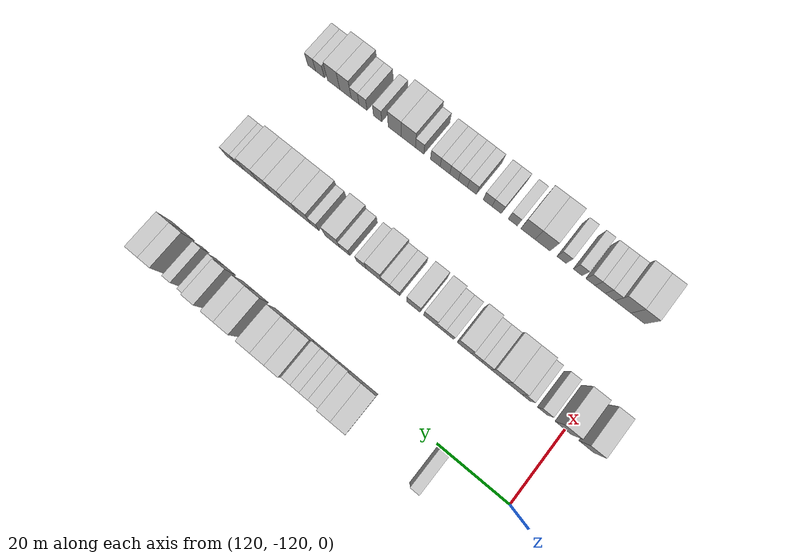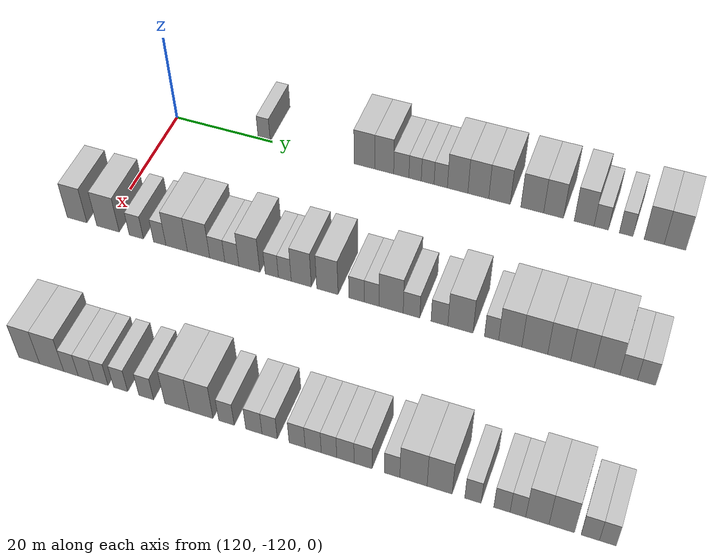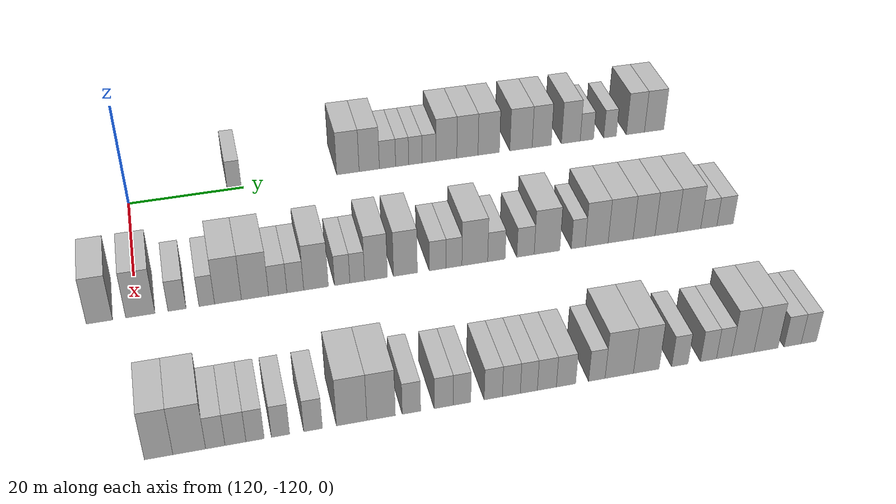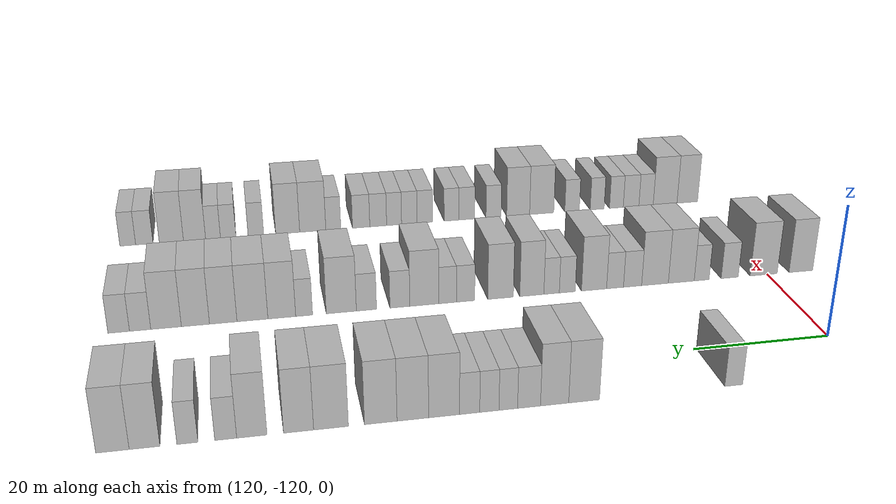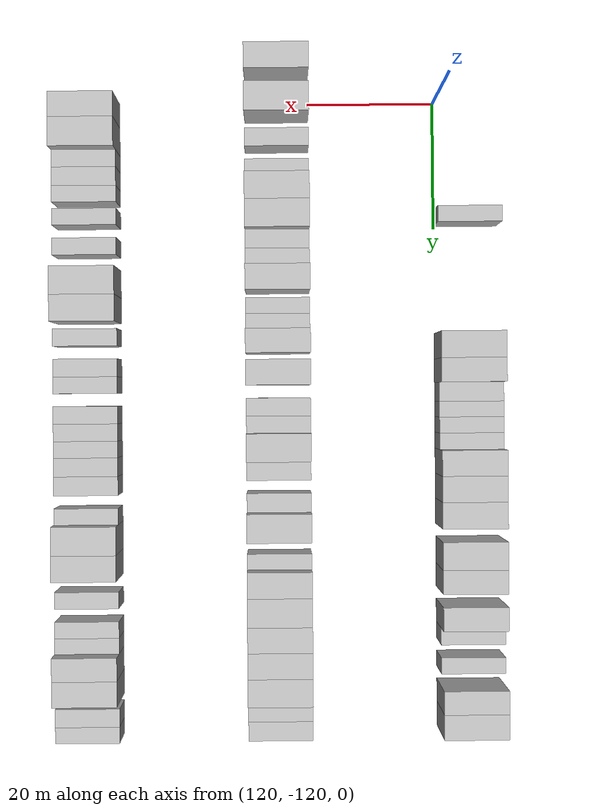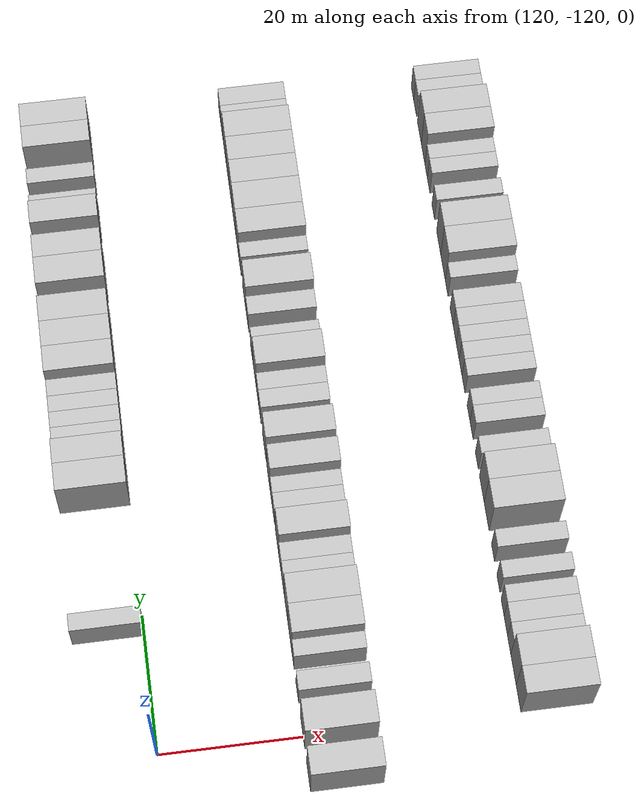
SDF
<sdf version="1.6">
 <world name="default">
  <model name="building_768">
   <static>1</static>
   <pose>115.0000 -101.6348 0 0.000000 0.000000 0.000000</pose>
   <link name="link">
    <pose>0 0 3.00 0 0 0</pose>
    <collision name="collision"><geometry><box><size>10.0000 2.4878 6.0000</size></box></geometry></collision>
    <visual name="visual">
     <cast_shadows>0</cast_shadows>
     <geometry><box><size>10.0000 2.4878 6.0000</size></box></geometry>
     <material>
      <script>
       <uri>model://HANNAS_wall/materials/scripts</uri>
       <uri>model://HANNAS_wall/materials/textures</uri>
       <name>vrc/HANNAS_wall</name>
      </script>
     </material>
    </visual>
   </link>
  </model>
  <model name="building_769">
   <static>1</static>
   <pose>115.0000 -81.2469 0 0.000000 0.000000 0.000000</pose>
   <link name="link">
    <pose>0 0 4.50 0 0 0</pose>
    <collision name="collision"><geometry><box><size>10.0000 4.0960 9.0000</size></box></geometry></collision>
    <visual name="visual">
     <cast_shadows>0</cast_shadows>
     <geometry><box><size>10.0000 4.0960 9.0000</size></box></geometry>
     <material>
      <script>
       <uri>model://HANNAS_wall/materials/scripts</uri>
       <uri>model://HANNAS_wall/materials/textures</uri>
       <name>vrc/HANNAS_wall</name>
      </script>
     </material>
    </visual>
   </link>
  </model>
  <model name="building_770">
   <static>1</static>
   <pose>115.0000 -77.3397 0 0.000000 0.000000 0.000000</pose>
   <link name="link">
    <pose>0 0 4.50 0 0 0</pose>
    <collision name="collision"><geometry><box><size>10.0000 3.7184 9.0000</size></box></geometry></collision>
    <visual name="visual">
     <cast_shadows>0</cast_shadows>
     <geometry><box><size>10.0000 3.7184 9.0000</size></box></geometry>
     <material>
      <script>
       <uri>model://HANNAS_wall/materials/scripts</uri>
       <uri>model://HANNAS_wall/materials/textures</uri>
       <name>vrc/HANNAS_wall</name>
      </script>
     </material>
    </visual>
   </link>
  </model>
  <model name="building_771">
   <static>1</static>
   <pose>115.0000 -73.9810 0 0.000000 0.000000 0.000000</pose>
   <link name="link">
    <pose>0 0 3.00 0 0 0</pose>
    <collision name="collision"><geometry><box><size>10.0000 2.9991 6.0000</size></box></geometry></collision>
    <visual name="visual">
     <cast_shadows>0</cast_shadows>
     <geometry><box><size>10.0000 2.9991 6.0000</size></box></geometry>
     <material>
      <script>
       <uri>model://HANNAS_wall/materials/scripts</uri>
       <uri>model://HANNAS_wall/materials/textures</uri>
       <name>vrc/HANNAS_wall</name>
      </script>
     </material>
    </visual>
   </link>
  </model>
  <model name="building_772">
   <static>1</static>
   <pose>115.0000 -71.2713 0 0.000000 0.000000 0.000000</pose>
   <link name="link">
    <pose>0 0 3.00 0 0 0</pose>
    <collision name="collision"><geometry><box><size>10.0000 2.4203 6.0000</size></box></geometry></collision>
    <visual name="visual">
     <cast_shadows>0</cast_shadows>
     <geometry><box><size>10.0000 2.4203 6.0000</size></box></geometry>
     <material>
      <script>
       <uri>model://HANNAS_wall/materials/scripts</uri>
       <uri>model://HANNAS_wall/materials/textures</uri>
       <name>vrc/HANNAS_wall</name>
      </script>
     </material>
    </visual>
   </link>
  </model>
  <model name="building_773">
   <static>1</static>
   <pose>115.0000 -68.8177 0 0.000000 0.000000 0.000000</pose>
   <link name="link">
    <pose>0 0 3.00 0 0 0</pose>
    <collision name="collision"><geometry><box><size>10.0000 2.4869 6.0000</size></box></geometry></collision>
    <visual name="visual">
     <cast_shadows>0</cast_shadows>
     <geometry><box><size>10.0000 2.4869 6.0000</size></box></geometry>
     <material>
      <script>
       <uri>model://HANNAS_wall/materials/scripts</uri>
       <uri>model://HANNAS_wall/materials/textures</uri>
       <name>vrc/HANNAS_wall</name>
      </script>
     </material>
    </visual>
   </link>
  </model>
  <model name="building_774">
   <static>1</static>
   <pose>115.0000 -66.2802 0 0.000000 0.000000 0.000000</pose>
   <link name="link">
    <pose>0 0 3.00 0 0 0</pose>
    <collision name="collision"><geometry><box><size>10.0000 2.5879 6.0000</size></box></geometry></collision>
    <visual name="visual">
     <cast_shadows>0</cast_shadows>
     <geometry><box><size>10.0000 2.5879 6.0000</size></box></geometry>
     <material>
      <script>
       <uri>model://HANNAS_wall/materials/scripts</uri>
       <uri>model://HANNAS_wall/materials/textures</uri>
       <name>vrc/HANNAS_wall</name>
      </script>
     </material>
    </visual>
   </link>
  </model>
  <model name="building_775">
   <static>1</static>
   <pose>115.0000 -63.0126 0 0.000000 0.000000 0.000000</pose>
   <link name="link">
    <pose>0 0 4.50 0 0 0</pose>
    <collision name="collision"><geometry><box><size>10.0000 3.9473 9.0000</size></box></geometry></collision>
    <visual name="visual">
     <cast_shadows>0</cast_shadows>
     <geometry><box><size>10.0000 3.9473 9.0000</size></box></geometry>
     <material>
      <script>
       <uri>model://HANNAS_wall/materials/scripts</uri>
       <uri>model://HANNAS_wall/materials/textures</uri>
       <name>vrc/HANNAS_wall</name>
      </script>
     </material>
    </visual>
   </link>
  </model>
  <model name="building_776">
   <static>1</static>
   <pose>115.0000 -59.0394 0 0.000000 0.000000 0.000000</pose>
   <link name="link">
    <pose>0 0 4.50 0 0 0</pose>
    <collision name="collision"><geometry><box><size>10.0000 3.9991 9.0000</size></box></geometry></collision>
    <visual name="visual">
     <cast_shadows>0</cast_shadows>
     <geometry><box><size>10.0000 3.9991 9.0000</size></box></geometry>
     <material>
      <script>
       <uri>model://HANNAS_wall/materials/scripts</uri>
       <uri>model://HANNAS_wall/materials/textures</uri>
       <name>vrc/HANNAS_wall</name>
      </script>
     </material>
    </visual>
   </link>
  </model>
  <model name="building_777">
   <static>1</static>
   <pose>115.0000 -54.9983 0 0.000000 0.000000 0.000000</pose>
   <link name="link">
    <pose>0 0 4.50 0 0 0</pose>
    <collision name="collision"><geometry><box><size>10.0000 4.0830 9.0000</size></box></geometry></collision>
    <visual name="visual">
     <cast_shadows>0</cast_shadows>
     <geometry><box><size>10.0000 4.0830 9.0000</size></box></geometry>
     <material>
      <script>
       <uri>model://HANNAS_wall/materials/scripts</uri>
       <uri>model://HANNAS_wall/materials/textures</uri>
       <name>vrc/HANNAS_wall</name>
      </script>
     </material>
    </visual>
   </link>
  </model>
  <model name="building_778">
   <static>1</static>
   <pose>115.0000 -48.8107 0 0.000000 0.000000 0.000000</pose>
   <link name="link">
    <pose>0 0 4.50 0 0 0</pose>
    <collision name="collision"><geometry><box><size>10.0000 4.2922 9.0000</size></box></geometry></collision>
    <visual name="visual">
     <cast_shadows>0</cast_shadows>
     <geometry><box><size>10.0000 4.2922 9.0000</size></box></geometry>
     <material>
      <script>
       <uri>model://HANNAS_wall/materials/scripts</uri>
       <uri>model://HANNAS_wall/materials/textures</uri>
       <name>vrc/HANNAS_wall</name>
      </script>
     </material>
    </visual>
   </link>
  </model>
  <model name="building_779">
   <static>1</static>
   <pose>115.0000 -44.8212 0 0.000000 0.000000 0.000000</pose>
   <link name="link">
    <pose>0 0 4.50 0 0 0</pose>
    <collision name="collision"><geometry><box><size>10.0000 3.6869 9.0000</size></box></geometry></collision>
    <visual name="visual">
     <cast_shadows>0</cast_shadows>
     <geometry><box><size>10.0000 3.6869 9.0000</size></box></geometry>
     <material>
      <script>
       <uri>model://HANNAS_wall/materials/scripts</uri>
       <uri>model://HANNAS_wall/materials/textures</uri>
       <name>vrc/HANNAS_wall</name>
      </script>
     </material>
    </visual>
   </link>
  </model>
  <model name="building_780">
   <static>1</static>
   <pose>115.0000 -39.1442 0 0.000000 0.000000 0.000000</pose>
   <link name="link">
    <pose>0 0 4.50 0 0 0</pose>
    <collision name="collision"><geometry><box><size>10.0000 3.6672 9.0000</size></box></geometry></collision>
    <visual name="visual">
     <cast_shadows>0</cast_shadows>
     <geometry><box><size>10.0000 3.6672 9.0000</size></box></geometry>
     <material>
      <script>
       <uri>model://HANNAS_wall/materials/scripts</uri>
       <uri>model://HANNAS_wall/materials/textures</uri>
       <name>vrc/HANNAS_wall</name>
      </script>
     </material>
    </visual>
   </link>
  </model>
  <model name="building_781">
   <static>1</static>
   <pose>115.0000 -35.9989 0 0.000000 0.000000 0.000000</pose>
   <link name="link">
    <pose>0 0 3.00 0 0 0</pose>
    <collision name="collision"><geometry><box><size>10.0000 2.6233 6.0000</size></box></geometry></collision>
    <visual name="visual">
     <cast_shadows>0</cast_shadows>
     <geometry><box><size>10.0000 2.6233 6.0000</size></box></geometry>
     <material>
      <script>
       <uri>model://HANNAS_wall/materials/scripts</uri>
       <uri>model://HANNAS_wall/materials/textures</uri>
       <name>vrc/HANNAS_wall</name>
      </script>
     </material>
    </visual>
   </link>
  </model>
  <model name="building_782">
   <static>1</static>
   <pose>115.0000 -31.4391 0 0.000000 0.000000 0.000000</pose>
   <link name="link">
    <pose>0 0 3.00 0 0 0</pose>
    <collision name="collision"><geometry><box><size>10.0000 2.4964 6.0000</size></box></geometry></collision>
    <visual name="visual">
     <cast_shadows>0</cast_shadows>
     <geometry><box><size>10.0000 2.4964 6.0000</size></box></geometry>
     <material>
      <script>
       <uri>model://HANNAS_wall/materials/scripts</uri>
       <uri>model://HANNAS_wall/materials/textures</uri>
       <name>vrc/HANNAS_wall</name>
      </script>
     </material>
    </visual>
   </link>
  </model>
  <model name="building_783">
   <static>1</static>
   <pose>115.0000 -26.3867 0 0.000000 0.000000 0.000000</pose>
   <link name="link">
    <pose>0 0 4.50 0 0 0</pose>
    <collision name="collision"><geometry><box><size>10.0000 3.6084 9.0000</size></box></geometry></collision>
    <visual name="visual">
     <cast_shadows>0</cast_shadows>
     <geometry><box><size>10.0000 3.6084 9.0000</size></box></geometry>
     <material>
      <script>
       <uri>model://HANNAS_wall/materials/scripts</uri>
       <uri>model://HANNAS_wall/materials/textures</uri>
       <name>vrc/HANNAS_wall</name>
      </script>
     </material>
    </visual>
   </link>
  </model>
  <model name="building_784">
   <static>1</static>
   <pose>115.0000 -22.6442 0 0.000000 0.000000 0.000000</pose>
   <link name="link">
    <pose>0 0 4.50 0 0 0</pose>
    <collision name="collision"><geometry><box><size>10.0000 3.8767 9.0000</size></box></geometry></collision>
    <visual name="visual">
     <cast_shadows>0</cast_shadows>
     <geometry><box><size>10.0000 3.8767 9.0000</size></box></geometry>
     <material>
      <script>
       <uri>model://HANNAS_wall/materials/scripts</uri>
       <uri>model://HANNAS_wall/materials/textures</uri>
       <name>vrc/HANNAS_wall</name>
      </script>
     </material>
    </visual>
   </link>
  </model>
  <model name="building_995">
   <static>1</static>
   <pose>145.0000 -125.6576 0 0.000000 0.000000 0.000000</pose>
   <link name="link">
    <pose>0 0 4.50 0 0 0</pose>
    <collision name="collision"><geometry><box><size>10.0000 3.9800 9.0000</size></box></geometry></collision>
    <visual name="visual">
     <cast_shadows>0</cast_shadows>
     <geometry><box><size>10.0000 3.9800 9.0000</size></box></geometry>
     <material>
      <script>
       <uri>model://HANNAS_wall/materials/scripts</uri>
       <uri>model://HANNAS_wall/materials/textures</uri>
       <name>vrc/HANNAS_wall</name>
      </script>
     </material>
    </visual>
   </link>
  </model>
  <model name="building_996">
   <static>1</static>
   <pose>145.0000 -119.4195 0 0.000000 0.000000 0.000000</pose>
   <link name="link">
    <pose>0 0 4.50 0 0 0</pose>
    <collision name="collision"><geometry><box><size>10.0000 4.4962 9.0000</size></box></geometry></collision>
    <visual name="visual">
     <cast_shadows>0</cast_shadows>
     <geometry><box><size>10.0000 4.4962 9.0000</size></box></geometry>
     <material>
      <script>
       <uri>model://HANNAS_wall/materials/scripts</uri>
       <uri>model://HANNAS_wall/materials/textures</uri>
       <name>vrc/HANNAS_wall</name>
      </script>
     </material>
    </visual>
   </link>
  </model>
  <model name="building_997">
   <static>1</static>
   <pose>145.0000 -113.7686 0 0.000000 0.000000 0.000000</pose>
   <link name="link">
    <pose>0 0 3.00 0 0 0</pose>
    <collision name="collision"><geometry><box><size>10.0000 2.8057 6.0000</size></box></geometry></collision>
    <visual name="visual">
     <cast_shadows>0</cast_shadows>
     <geometry><box><size>10.0000 2.8057 6.0000</size></box></geometry>
     <material>
      <script>
       <uri>model://HANNAS_wall/materials/scripts</uri>
       <uri>model://HANNAS_wall/materials/textures</uri>
       <name>vrc/HANNAS_wall</name>
      </script>
     </material>
    </visual>
   </link>
  </model>
  <model name="building_998">
   <static>1</static>
   <pose>145.0000 -109.1458 0 0.000000 0.000000 0.000000</pose>
   <link name="link">
    <pose>0 0 3.00 0 0 0</pose>
    <collision name="collision"><geometry><box><size>10.0000 2.4399 6.0000</size></box></geometry></collision>
    <visual name="visual">
     <cast_shadows>0</cast_shadows>
     <geometry><box><size>10.0000 2.4399 6.0000</size></box></geometry>
     <material>
      <script>
       <uri>model://HANNAS_wall/materials/scripts</uri>
       <uri>model://HANNAS_wall/materials/textures</uri>
       <name>vrc/HANNAS_wall</name>
      </script>
     </material>
    </visual>
   </link>
  </model>
  <model name="building_999">
   <static>1</static>
   <pose>145.0000 -105.8219 0 0.000000 0.000000 0.000000</pose>
   <link name="link">
    <pose>0 0 4.50 0 0 0</pose>
    <collision name="collision"><geometry><box><size>10.0000 4.2080 9.0000</size></box></geometry></collision>
    <visual name="visual">
     <cast_shadows>0</cast_shadows>
     <geometry><box><size>10.0000 4.2080 9.0000</size></box></geometry>
     <material>
      <script>
       <uri>model://HANNAS_wall/materials/scripts</uri>
       <uri>model://HANNAS_wall/materials/textures</uri>
       <name>vrc/HANNAS_wall</name>
      </script>
     </material>
    </visual>
   </link>
  </model>
  <model name="building_1000">
   <static>1</static>
   <pose>145.0000 -101.5612 0 0.000000 0.000000 0.000000</pose>
   <link name="link">
    <pose>0 0 4.50 0 0 0</pose>
    <collision name="collision"><geometry><box><size>10.0000 4.3134 9.0000</size></box></geometry></collision>
    <visual name="visual">
     <cast_shadows>0</cast_shadows>
     <geometry><box><size>10.0000 4.3134 9.0000</size></box></geometry>
     <material>
      <script>
       <uri>model://HANNAS_wall/materials/scripts</uri>
       <uri>model://HANNAS_wall/materials/textures</uri>
       <name>vrc/HANNAS_wall</name>
      </script>
     </material>
    </visual>
   </link>
  </model>
  <model name="building_1001">
   <static>1</static>
   <pose>145.0000 -97.9473 0 0.000000 0.000000 0.000000</pose>
   <link name="link">
    <pose>0 0 3.00 0 0 0</pose>
    <collision name="collision"><geometry><box><size>10.0000 2.9144 6.0000</size></box></geometry></collision>
    <visual name="visual">
     <cast_shadows>0</cast_shadows>
     <geometry><box><size>10.0000 2.9144 6.0000</size></box></geometry>
     <material>
      <script>
       <uri>model://HANNAS_wall/materials/scripts</uri>
       <uri>model://HANNAS_wall/materials/textures</uri>
       <name>vrc/HANNAS_wall</name>
      </script>
     </material>
    </visual>
   </link>
  </model>
  <model name="building_1002">
   <static>1</static>
   <pose>145.0000 -95.1442 0 0.000000 0.000000 0.000000</pose>
   <link name="link">
    <pose>0 0 3.00 0 0 0</pose>
    <collision name="collision"><geometry><box><size>10.0000 2.6918 6.0000</size></box></geometry></collision>
    <visual name="visual">
     <cast_shadows>0</cast_shadows>
     <geometry><box><size>10.0000 2.6918 6.0000</size></box></geometry>
     <material>
      <script>
       <uri>model://HANNAS_wall/materials/scripts</uri>
       <uri>model://HANNAS_wall/materials/textures</uri>
       <name>vrc/HANNAS_wall</name>
      </script>
     </material>
    </visual>
   </link>
  </model>
  <model name="building_1003">
   <static>1</static>
   <pose>145.0000 -91.8085 0 0.000000 0.000000 0.000000</pose>
   <link name="link">
    <pose>0 0 4.50 0 0 0</pose>
    <collision name="collision"><geometry><box><size>10.0000 3.9796 9.0000</size></box></geometry></collision>
    <visual name="visual">
     <cast_shadows>0</cast_shadows>
     <geometry><box><size>10.0000 3.9796 9.0000</size></box></geometry>
     <material>
      <script>
       <uri>model://HANNAS_wall/materials/scripts</uri>
       <uri>model://HANNAS_wall/materials/textures</uri>
       <name>vrc/HANNAS_wall</name>
      </script>
     </material>
    </visual>
   </link>
  </model>
  <model name="building_1004">
   <static>1</static>
   <pose>145.0000 -87.5722 0 0.000000 0.000000 0.000000</pose>
   <link name="link">
    <pose>0 0 3.00 0 0 0</pose>
    <collision name="collision"><geometry><box><size>10.0000 2.4931 6.0000</size></box></geometry></collision>
    <visual name="visual">
     <cast_shadows>0</cast_shadows>
     <geometry><box><size>10.0000 2.4931 6.0000</size></box></geometry>
     <material>
      <script>
       <uri>model://HANNAS_wall/materials/scripts</uri>
       <uri>model://HANNAS_wall/materials/textures</uri>
       <name>vrc/HANNAS_wall</name>
      </script>
     </material>
    </visual>
   </link>
  </model>
  <model name="building_1005">
   <static>1</static>
   <pose>145.0000 -85.1171 0 0.000000 0.000000 0.000000</pose>
   <link name="link">
    <pose>0 0 3.00 0 0 0</pose>
    <collision name="collision"><geometry><box><size>10.0000 2.4171 6.0000</size></box></geometry></collision>
    <visual name="visual">
     <cast_shadows>0</cast_shadows>
     <geometry><box><size>10.0000 2.4171 6.0000</size></box></geometry>
     <material>
      <script>
       <uri>model://HANNAS_wall/materials/scripts</uri>
       <uri>model://HANNAS_wall/materials/textures</uri>
       <name>vrc/HANNAS_wall</name>
      </script>
     </material>
    </visual>
   </link>
  </model>
  <model name="building_1006">
   <static>1</static>
   <pose>145.0000 -82.0373 0 0.000000 0.000000 0.000000</pose>
   <link name="link">
    <pose>0 0 4.50 0 0 0</pose>
    <collision name="collision"><geometry><box><size>10.0000 3.7426 9.0000</size></box></geometry></collision>
    <visual name="visual">
     <cast_shadows>0</cast_shadows>
     <geometry><box><size>10.0000 3.7426 9.0000</size></box></geometry>
     <material>
      <script>
       <uri>model://HANNAS_wall/materials/scripts</uri>
       <uri>model://HANNAS_wall/materials/textures</uri>
       <name>vrc/HANNAS_wall</name>
      </script>
     </material>
    </visual>
   </link>
  </model>
  <model name="building_1007">
   <static>1</static>
   <pose>145.0000 -77.1943 0 0.000000 0.000000 0.000000</pose>
   <link name="link">
    <pose>0 0 4.50 0 0 0</pose>
    <collision name="collision"><geometry><box><size>10.0000 3.9434 9.0000</size></box></geometry></collision>
    <visual name="visual">
     <cast_shadows>0</cast_shadows>
     <geometry><box><size>10.0000 3.9434 9.0000</size></box></geometry>
     <material>
      <script>
       <uri>model://HANNAS_wall/materials/scripts</uri>
       <uri>model://HANNAS_wall/materials/textures</uri>
       <name>vrc/HANNAS_wall</name>
      </script>
     </material>
    </visual>
   </link>
  </model>
  <model name="building_1008">
   <static>1</static>
   <pose>145.0000 -71.8227 0 0.000000 0.000000 0.000000</pose>
   <link name="link">
    <pose>0 0 3.00 0 0 0</pose>
    <collision name="collision"><geometry><box><size>10.0000 2.7998 6.0000</size></box></geometry></collision>
    <visual name="visual">
     <cast_shadows>0</cast_shadows>
     <geometry><box><size>10.0000 2.7998 6.0000</size></box></geometry>
     <material>
      <script>
       <uri>model://HANNAS_wall/materials/scripts</uri>
       <uri>model://HANNAS_wall/materials/textures</uri>
       <name>vrc/HANNAS_wall</name>
      </script>
     </material>
    </visual>
   </link>
  </model>
  <model name="building_1009">
   <static>1</static>
   <pose>145.0000 -69.0883 0 0.000000 0.000000 0.000000</pose>
   <link name="link">
    <pose>0 0 3.00 0 0 0</pose>
    <collision name="collision"><geometry><box><size>10.0000 2.6690 6.0000</size></box></geometry></collision>
    <visual name="visual">
     <cast_shadows>0</cast_shadows>
     <geometry><box><size>10.0000 2.6690 6.0000</size></box></geometry>
     <material>
      <script>
       <uri>model://HANNAS_wall/materials/scripts</uri>
       <uri>model://HANNAS_wall/materials/textures</uri>
       <name>vrc/HANNAS_wall</name>
      </script>
     </material>
    </visual>
   </link>
  </model>
  <model name="building_1010">
   <static>1</static>
   <pose>145.0000 -65.5753 0 0.000000 0.000000 0.000000</pose>
   <link name="link">
    <pose>0 0 4.50 0 0 0</pose>
    <collision name="collision"><geometry><box><size>10.0000 4.3570 9.0000</size></box></geometry></collision>
    <visual name="visual">
     <cast_shadows>0</cast_shadows>
     <geometry><box><size>10.0000 4.3570 9.0000</size></box></geometry>
     <material>
      <script>
       <uri>model://HANNAS_wall/materials/scripts</uri>
       <uri>model://HANNAS_wall/materials/textures</uri>
       <name>vrc/HANNAS_wall</name>
      </script>
     </material>
    </visual>
   </link>
  </model>
  <model name="building_1011">
   <static>1</static>
   <pose>145.0000 -61.9091 0 0.000000 0.000000 0.000000</pose>
   <link name="link">
    <pose>0 0 3.00 0 0 0</pose>
    <collision name="collision"><geometry><box><size>10.0000 2.9754 6.0000</size></box></geometry></collision>
    <visual name="visual">
     <cast_shadows>0</cast_shadows>
     <geometry><box><size>10.0000 2.9754 6.0000</size></box></geometry>
     <material>
      <script>
       <uri>model://HANNAS_wall/materials/scripts</uri>
       <uri>model://HANNAS_wall/materials/textures</uri>
       <name>vrc/HANNAS_wall</name>
      </script>
     </material>
    </visual>
   </link>
  </model>
  <model name="building_1012">
   <static>1</static>
   <pose>145.0000 -56.9288 0 0.000000 0.000000 0.000000</pose>
   <link name="link">
    <pose>0 0 3.00 0 0 0</pose>
    <collision name="collision"><geometry><box><size>10.0000 2.9853 6.0000</size></box></geometry></collision>
    <visual name="visual">
     <cast_shadows>0</cast_shadows>
     <geometry><box><size>10.0000 2.9853 6.0000</size></box></geometry>
     <material>
      <script>
       <uri>model://HANNAS_wall/materials/scripts</uri>
       <uri>model://HANNAS_wall/materials/textures</uri>
       <name>vrc/HANNAS_wall</name>
      </script>
     </material>
    </visual>
   </link>
  </model>
  <model name="building_1013">
   <static>1</static>
   <pose>145.0000 -53.2206 0 0.000000 0.000000 0.000000</pose>
   <link name="link">
    <pose>0 0 4.50 0 0 0</pose>
    <collision name="collision"><geometry><box><size>10.0000 4.4311 9.0000</size></box></geometry></collision>
    <visual name="visual">
     <cast_shadows>0</cast_shadows>
     <geometry><box><size>10.0000 4.4311 9.0000</size></box></geometry>
     <material>
      <script>
       <uri>model://HANNAS_wall/materials/scripts</uri>
       <uri>model://HANNAS_wall/materials/textures</uri>
       <name>vrc/HANNAS_wall</name>
      </script>
     </material>
    </visual>
   </link>
  </model>
  <model name="building_1014">
   <static>1</static>
   <pose>145.0000 -47.7756 0 0.000000 0.000000 0.000000</pose>
   <link name="link">
    <pose>0 0 3.00 0 0 0</pose>
    <collision name="collision"><geometry><box><size>10.0000 2.4588 6.0000</size></box></geometry></collision>
    <visual name="visual">
     <cast_shadows>0</cast_shadows>
     <geometry><box><size>10.0000 2.4588 6.0000</size></box></geometry>
     <material>
      <script>
       <uri>model://HANNAS_wall/materials/scripts</uri>
       <uri>model://HANNAS_wall/materials/textures</uri>
       <name>vrc/HANNAS_wall</name>
      </script>
     </material>
    </visual>
   </link>
  </model>
  <model name="building_1015">
   <static>1</static>
   <pose>145.0000 -44.5375 0 0.000000 0.000000 0.000000</pose>
   <link name="link">
    <pose>0 0 4.50 0 0 0</pose>
    <collision name="collision"><geometry><box><size>10.0000 4.0175 9.0000</size></box></geometry></collision>
    <visual name="visual">
     <cast_shadows>0</cast_shadows>
     <geometry><box><size>10.0000 4.0175 9.0000</size></box></geometry>
     <material>
      <script>
       <uri>model://HANNAS_wall/materials/scripts</uri>
       <uri>model://HANNAS_wall/materials/textures</uri>
       <name>vrc/HANNAS_wall</name>
      </script>
     </material>
    </visual>
   </link>
  </model>
  <model name="building_1016">
   <static>1</static>
   <pose>145.0000 -40.3135 0 0.000000 0.000000 0.000000</pose>
   <link name="link">
    <pose>0 0 4.50 0 0 0</pose>
    <collision name="collision"><geometry><box><size>10.0000 4.4306 9.0000</size></box></geometry></collision>
    <visual name="visual">
     <cast_shadows>0</cast_shadows>
     <geometry><box><size>10.0000 4.4306 9.0000</size></box></geometry>
     <material>
      <script>
       <uri>model://HANNAS_wall/materials/scripts</uri>
       <uri>model://HANNAS_wall/materials/textures</uri>
       <name>vrc/HANNAS_wall</name>
      </script>
     </material>
    </visual>
   </link>
  </model>
  <model name="building_1017">
   <static>1</static>
   <pose>145.0000 -36.1448 0 0.000000 0.000000 0.000000</pose>
   <link name="link">
    <pose>0 0 4.50 0 0 0</pose>
    <collision name="collision"><geometry><box><size>10.0000 3.9068 9.0000</size></box></geometry></collision>
    <visual name="visual">
     <cast_shadows>0</cast_shadows>
     <geometry><box><size>10.0000 3.9068 9.0000</size></box></geometry>
     <material>
      <script>
       <uri>model://HANNAS_wall/materials/scripts</uri>
       <uri>model://HANNAS_wall/materials/textures</uri>
       <name>vrc/HANNAS_wall</name>
      </script>
     </material>
    </visual>
   </link>
  </model>
  <model name="building_1018">
   <static>1</static>
   <pose>145.0000 -32.2076 0 0.000000 0.000000 0.000000</pose>
   <link name="link">
    <pose>0 0 4.50 0 0 0</pose>
    <collision name="collision"><geometry><box><size>10.0000 3.9676 9.0000</size></box></geometry></collision>
    <visual name="visual">
     <cast_shadows>0</cast_shadows>
     <geometry><box><size>10.0000 3.9676 9.0000</size></box></geometry>
     <material>
      <script>
       <uri>model://HANNAS_wall/materials/scripts</uri>
       <uri>model://HANNAS_wall/materials/textures</uri>
       <name>vrc/HANNAS_wall</name>
      </script>
     </material>
    </visual>
   </link>
  </model>
  <model name="building_1019">
   <static>1</static>
   <pose>145.0000 -28.0828 0 0.000000 0.000000 0.000000</pose>
   <link name="link">
    <pose>0 0 4.50 0 0 0</pose>
    <collision name="collision"><geometry><box><size>10.0000 4.2822 9.0000</size></box></geometry></collision>
    <visual name="visual">
     <cast_shadows>0</cast_shadows>
     <geometry><box><size>10.0000 4.2822 9.0000</size></box></geometry>
     <material>
      <script>
       <uri>model://HANNAS_wall/materials/scripts</uri>
       <uri>model://HANNAS_wall/materials/textures</uri>
       <name>vrc/HANNAS_wall</name>
      </script>
     </material>
    </visual>
   </link>
  </model>
  <model name="building_1020">
   <static>1</static>
   <pose>145.0000 -24.4645 0 0.000000 0.000000 0.000000</pose>
   <link name="link">
    <pose>0 0 3.00 0 0 0</pose>
    <collision name="collision"><geometry><box><size>10.0000 2.9543 6.0000</size></box></geometry></collision>
    <visual name="visual">
     <cast_shadows>0</cast_shadows>
     <geometry><box><size>10.0000 2.9543 6.0000</size></box></geometry>
     <material>
      <script>
       <uri>model://HANNAS_wall/materials/scripts</uri>
       <uri>model://HANNAS_wall/materials/textures</uri>
       <name>vrc/HANNAS_wall</name>
      </script>
     </material>
    </visual>
   </link>
  </model>
  <model name="building_1021">
   <static>1</static>
   <pose>145.0000 -21.4991 0 0.000000 0.000000 0.000000</pose>
   <link name="link">
    <pose>0 0 3.00 0 0 0</pose>
    <collision name="collision"><geometry><box><size>10.0000 2.9765 6.0000</size></box></geometry></collision>
    <visual name="visual">
     <cast_shadows>0</cast_shadows>
     <geometry><box><size>10.0000 2.9765 6.0000</size></box></geometry>
     <material>
      <script>
       <uri>model://HANNAS_wall/materials/scripts</uri>
       <uri>model://HANNAS_wall/materials/textures</uri>
       <name>vrc/HANNAS_wall</name>
      </script>
     </material>
    </visual>
   </link>
  </model>
  <model name="building_1216">
   <static>1</static>
   <pose>175.0000 -118.3979 0 0.000000 0.000000 0.000000</pose>
   <link name="link">
    <pose>0 0 4.50 0 0 0</pose>
    <collision name="collision"><geometry><box><size>10.0000 3.8728 9.0000</size></box></geometry></collision>
    <visual name="visual">
     <cast_shadows>0</cast_shadows>
     <geometry><box><size>10.0000 3.8728 9.0000</size></box></geometry>
     <material>
      <script>
       <uri>model://HANNAS_wall/materials/scripts</uri>
       <uri>model://HANNAS_wall/materials/textures</uri>
       <name>vrc/HANNAS_wall</name>
      </script>
     </material>
    </visual>
   </link>
  </model>
  <model name="building_1217">
   <static>1</static>
   <pose>175.0000 -114.2267 0 0.000000 0.000000 0.000000</pose>
   <link name="link">
    <pose>0 0 4.50 0 0 0</pose>
    <collision name="collision"><geometry><box><size>10.0000 4.4695 9.0000</size></box></geometry></collision>
    <visual name="visual">
     <cast_shadows>0</cast_shadows>
     <geometry><box><size>10.0000 4.4695 9.0000</size></box></geometry>
     <material>
      <script>
       <uri>model://HANNAS_wall/materials/scripts</uri>
       <uri>model://HANNAS_wall/materials/textures</uri>
       <name>vrc/HANNAS_wall</name>
      </script>
     </material>
    </visual>
   </link>
  </model>
  <model name="building_1218">
   <static>1</static>
   <pose>175.0000 -110.6566 0 0.000000 0.000000 0.000000</pose>
   <link name="link">
    <pose>0 0 3.00 0 0 0</pose>
    <collision name="collision"><geometry><box><size>10.0000 2.6708 6.0000</size></box></geometry></collision>
    <visual name="visual">
     <cast_shadows>0</cast_shadows>
     <geometry><box><size>10.0000 2.6708 6.0000</size></box></geometry>
     <material>
      <script>
       <uri>model://HANNAS_wall/materials/scripts</uri>
       <uri>model://HANNAS_wall/materials/textures</uri>
       <name>vrc/HANNAS_wall</name>
      </script>
     </material>
    </visual>
   </link>
  </model>
  <model name="building_1219">
   <static>1</static>
   <pose>175.0000 -107.8693 0 0.000000 0.000000 0.000000</pose>
   <link name="link">
    <pose>0 0 3.00 0 0 0</pose>
    <collision name="collision"><geometry><box><size>10.0000 2.9037 6.0000</size></box></geometry></collision>
    <visual name="visual">
     <cast_shadows>0</cast_shadows>
     <geometry><box><size>10.0000 2.9037 6.0000</size></box></geometry>
     <material>
      <script>
       <uri>model://HANNAS_wall/materials/scripts</uri>
       <uri>model://HANNAS_wall/materials/textures</uri>
       <name>vrc/HANNAS_wall</name>
      </script>
     </material>
    </visual>
   </link>
  </model>
  <model name="building_1220">
   <static>1</static>
   <pose>175.0000 -105.1488 0 0.000000 0.000000 0.000000</pose>
   <link name="link">
    <pose>0 0 3.00 0 0 0</pose>
    <collision name="collision"><geometry><box><size>10.0000 2.5373 6.0000</size></box></geometry></collision>
    <visual name="visual">
     <cast_shadows>0</cast_shadows>
     <geometry><box><size>10.0000 2.5373 6.0000</size></box></geometry>
     <material>
      <script>
       <uri>model://HANNAS_wall/materials/scripts</uri>
       <uri>model://HANNAS_wall/materials/textures</uri>
       <name>vrc/HANNAS_wall</name>
      </script>
     </material>
    </visual>
   </link>
  </model>
  <model name="building_1221">
   <static>1</static>
   <pose>175.0000 -101.6024 0 0.000000 0.000000 0.000000</pose>
   <link name="link">
    <pose>0 0 3.00 0 0 0</pose>
    <collision name="collision"><geometry><box><size>10.0000 2.5555 6.0000</size></box></geometry></collision>
    <visual name="visual">
     <cast_shadows>0</cast_shadows>
     <geometry><box><size>10.0000 2.5555 6.0000</size></box></geometry>
     <material>
      <script>
       <uri>model://HANNAS_wall/materials/scripts</uri>
       <uri>model://HANNAS_wall/materials/textures</uri>
       <name>vrc/HANNAS_wall</name>
      </script>
     </material>
    </visual>
   </link>
  </model>
  <model name="building_1222">
   <static>1</static>
   <pose>175.0000 -97.0023 0 0.000000 0.000000 0.000000</pose>
   <link name="link">
    <pose>0 0 3.00 0 0 0</pose>
    <collision name="collision"><geometry><box><size>10.0000 2.6446 6.0000</size></box></geometry></collision>
    <visual name="visual">
     <cast_shadows>0</cast_shadows>
     <geometry><box><size>10.0000 2.6446 6.0000</size></box></geometry>
     <material>
      <script>
       <uri>model://HANNAS_wall/materials/scripts</uri>
       <uri>model://HANNAS_wall/materials/textures</uri>
       <name>vrc/HANNAS_wall</name>
      </script>
     </material>
    </visual>
   </link>
  </model>
  <model name="building_1223">
   <static>1</static>
   <pose>175.0000 -91.4977 0 0.000000 0.000000 0.000000</pose>
   <link name="link">
    <pose>0 0 4.50 0 0 0</pose>
    <collision name="collision"><geometry><box><size>10.0000 4.3646 9.0000</size></box></geometry></collision>
    <visual name="visual">
     <cast_shadows>0</cast_shadows>
     <geometry><box><size>10.0000 4.3646 9.0000</size></box></geometry>
     <material>
      <script>
       <uri>model://HANNAS_wall/materials/scripts</uri>
       <uri>model://HANNAS_wall/materials/textures</uri>
       <name>vrc/HANNAS_wall</name>
      </script>
     </material>
    </visual>
   </link>
  </model>
  <model name="building_1224">
   <static>1</static>
   <pose>175.0000 -87.2584 0 0.000000 0.000000 0.000000</pose>
   <link name="link">
    <pose>0 0 4.50 0 0 0</pose>
    <collision name="collision"><geometry><box><size>10.0000 4.1139 9.0000</size></box></geometry></collision>
    <visual name="visual">
     <cast_shadows>0</cast_shadows>
     <geometry><box><size>10.0000 4.1139 9.0000</size></box></geometry>
     <material>
      <script>
       <uri>model://HANNAS_wall/materials/scripts</uri>
       <uri>model://HANNAS_wall/materials/textures</uri>
       <name>vrc/HANNAS_wall</name>
      </script>
     </material>
    </visual>
   </link>
  </model>
  <model name="building_1225">
   <static>1</static>
   <pose>175.0000 -82.8580 0 0.000000 0.000000 0.000000</pose>
   <link name="link">
    <pose>0 0 3.00 0 0 0</pose>
    <collision name="collision"><geometry><box><size>10.0000 2.6869 6.0000</size></box></geometry></collision>
    <visual name="visual">
     <cast_shadows>0</cast_shadows>
     <geometry><box><size>10.0000 2.6869 6.0000</size></box></geometry>
     <material>
      <script>
       <uri>model://HANNAS_wall/materials/scripts</uri>
       <uri>model://HANNAS_wall/materials/textures</uri>
       <name>vrc/HANNAS_wall</name>
      </script>
     </material>
    </visual>
   </link>
  </model>
  <model name="building_1226">
   <static>1</static>
   <pose>175.0000 -78.1178 0 0.000000 0.000000 0.000000</pose>
   <link name="link">
    <pose>0 0 3.00 0 0 0</pose>
    <collision name="collision"><geometry><box><size>10.0000 2.7935 6.0000</size></box></geometry></collision>
    <visual name="visual">
     <cast_shadows>0</cast_shadows>
     <geometry><box><size>10.0000 2.7935 6.0000</size></box></geometry>
     <material>
      <script>
       <uri>model://HANNAS_wall/materials/scripts</uri>
       <uri>model://HANNAS_wall/materials/textures</uri>
       <name>vrc/HANNAS_wall</name>
      </script>
     </material>
    </visual>
   </link>
  </model>
  <model name="building_1227">
   <static>1</static>
   <pose>175.0000 -75.4197 0 0.000000 0.000000 0.000000</pose>
   <link name="link">
    <pose>0 0 3.00 0 0 0</pose>
    <collision name="collision"><geometry><box><size>10.0000 2.6027 6.0000</size></box></geometry></collision>
    <visual name="visual">
     <cast_shadows>0</cast_shadows>
     <geometry><box><size>10.0000 2.6027 6.0000</size></box></geometry>
     <material>
      <script>
       <uri>model://HANNAS_wall/materials/scripts</uri>
       <uri>model://HANNAS_wall/materials/textures</uri>
       <name>vrc/HANNAS_wall</name>
      </script>
     </material>
    </visual>
   </link>
  </model>
  <model name="building_1228">
   <static>1</static>
   <pose>175.0000 -70.7558 0 0.000000 0.000000 0.000000</pose>
   <link name="link">
    <pose>0 0 3.00 0 0 0</pose>
    <collision name="collision"><geometry><box><size>10.0000 2.7252 6.0000</size></box></geometry></collision>
    <visual name="visual">
     <cast_shadows>0</cast_shadows>
     <geometry><box><size>10.0000 2.7252 6.0000</size></box></geometry>
     <material>
      <script>
       <uri>model://HANNAS_wall/materials/scripts</uri>
       <uri>model://HANNAS_wall/materials/textures</uri>
       <name>vrc/HANNAS_wall</name>
      </script>
     </material>
    </visual>
   </link>
  </model>
  <model name="building_1229">
   <static>1</static>
   <pose>175.0000 -68.0453 0 0.000000 0.000000 0.000000</pose>
   <link name="link">
    <pose>0 0 3.00 0 0 0</pose>
    <collision name="collision"><geometry><box><size>10.0000 2.6959 6.0000</size></box></geometry></collision>
    <visual name="visual">
     <cast_shadows>0</cast_shadows>
     <geometry><box><size>10.0000 2.6959 6.0000</size></box></geometry>
     <material>
      <script>
       <uri>model://HANNAS_wall/materials/scripts</uri>
       <uri>model://HANNAS_wall/materials/textures</uri>
       <name>vrc/HANNAS_wall</name>
      </script>
     </material>
    </visual>
   </link>
  </model>
  <model name="building_1230">
   <static>1</static>
   <pose>175.0000 -65.4051 0 0.000000 0.000000 0.000000</pose>
   <link name="link">
    <pose>0 0 3.00 0 0 0</pose>
    <collision name="collision"><geometry><box><size>10.0000 2.5845 6.0000</size></box></geometry></collision>
    <visual name="visual">
     <cast_shadows>0</cast_shadows>
     <geometry><box><size>10.0000 2.5845 6.0000</size></box></geometry>
     <material>
      <script>
       <uri>model://HANNAS_wall/materials/scripts</uri>
       <uri>model://HANNAS_wall/materials/textures</uri>
       <name>vrc/HANNAS_wall</name>
      </script>
     </material>
    </visual>
   </link>
  </model>
  <model name="building_1231">
   <static>1</static>
   <pose>175.0000 -62.6644 0 0.000000 0.000000 0.000000</pose>
   <link name="link">
    <pose>0 0 3.00 0 0 0</pose>
    <collision name="collision"><geometry><box><size>10.0000 2.8968 6.0000</size></box></geometry></collision>
    <visual name="visual">
     <cast_shadows>0</cast_shadows>
     <geometry><box><size>10.0000 2.8968 6.0000</size></box></geometry>
     <material>
      <script>
       <uri>model://HANNAS_wall/materials/scripts</uri>
       <uri>model://HANNAS_wall/materials/textures</uri>
       <name>vrc/HANNAS_wall</name>
      </script>
     </material>
    </visual>
   </link>
  </model>
  <model name="building_1232">
   <static>1</static>
   <pose>175.0000 -59.7398 0 0.000000 0.000000 0.000000</pose>
   <link name="link">
    <pose>0 0 3.00 0 0 0</pose>
    <collision name="collision"><geometry><box><size>10.0000 2.9524 6.0000</size></box></geometry></collision>
    <visual name="visual">
     <cast_shadows>0</cast_shadows>
     <geometry><box><size>10.0000 2.9524 6.0000</size></box></geometry>
     <material>
      <script>
       <uri>model://HANNAS_wall/materials/scripts</uri>
       <uri>model://HANNAS_wall/materials/textures</uri>
       <name>vrc/HANNAS_wall</name>
      </script>
     </material>
    </visual>
   </link>
  </model>
  <model name="building_1233">
   <static>1</static>
   <pose>175.0000 -54.9896 0 0.000000 0.000000 0.000000</pose>
   <link name="link">
    <pose>0 0 3.00 0 0 0</pose>
    <collision name="collision"><geometry><box><size>10.0000 2.5480 6.0000</size></box></geometry></collision>
    <visual name="visual">
     <cast_shadows>0</cast_shadows>
     <geometry><box><size>10.0000 2.5480 6.0000</size></box></geometry>
     <material>
      <script>
       <uri>model://HANNAS_wall/materials/scripts</uri>
       <uri>model://HANNAS_wall/materials/textures</uri>
       <name>vrc/HANNAS_wall</name>
      </script>
     </material>
    </visual>
   </link>
  </model>
  <model name="building_1234">
   <static>1</static>
   <pose>175.0000 -51.5088 0 0.000000 0.000000 0.000000</pose>
   <link name="link">
    <pose>0 0 4.50 0 0 0</pose>
    <collision name="collision"><geometry><box><size>10.0000 4.4136 9.0000</size></box></geometry></collision>
    <visual name="visual">
     <cast_shadows>0</cast_shadows>
     <geometry><box><size>10.0000 4.4136 9.0000</size></box></geometry>
     <material>
      <script>
       <uri>model://HANNAS_wall/materials/scripts</uri>
       <uri>model://HANNAS_wall/materials/textures</uri>
       <name>vrc/HANNAS_wall</name>
      </script>
     </material>
    </visual>
   </link>
  </model>
  <model name="building_1235">
   <static>1</static>
   <pose>175.0000 -47.2902 0 0.000000 0.000000 0.000000</pose>
   <link name="link">
    <pose>0 0 4.50 0 0 0</pose>
    <collision name="collision"><geometry><box><size>10.0000 4.0237 9.0000</size></box></geometry></collision>
    <visual name="visual">
     <cast_shadows>0</cast_shadows>
     <geometry><box><size>10.0000 4.0237 9.0000</size></box></geometry>
     <material>
      <script>
       <uri>model://HANNAS_wall/materials/scripts</uri>
       <uri>model://HANNAS_wall/materials/textures</uri>
       <name>vrc/HANNAS_wall</name>
      </script>
     </material>
    </visual>
   </link>
  </model>
  <model name="building_1236">
   <static>1</static>
   <pose>175.0000 -41.9804 0 0.000000 0.000000 0.000000</pose>
   <link name="link">
    <pose>0 0 3.00 0 0 0</pose>
    <collision name="collision"><geometry><box><size>10.0000 2.5958 6.0000</size></box></geometry></collision>
    <visual name="visual">
     <cast_shadows>0</cast_shadows>
     <geometry><box><size>10.0000 2.5958 6.0000</size></box></geometry>
     <material>
      <script>
       <uri>model://HANNAS_wall/materials/scripts</uri>
       <uri>model://HANNAS_wall/materials/textures</uri>
       <name>vrc/HANNAS_wall</name>
      </script>
     </material>
    </visual>
   </link>
  </model>
  <model name="building_1237">
   <static>1</static>
   <pose>175.0000 -37.4029 0 0.000000 0.000000 0.000000</pose>
   <link name="link">
    <pose>0 0 3.00 0 0 0</pose>
    <collision name="collision"><geometry><box><size>10.0000 2.5591 6.0000</size></box></geometry></collision>
    <visual name="visual">
     <cast_shadows>0</cast_shadows>
     <geometry><box><size>10.0000 2.5591 6.0000</size></box></geometry>
     <material>
      <script>
       <uri>model://HANNAS_wall/materials/scripts</uri>
       <uri>model://HANNAS_wall/materials/textures</uri>
       <name>vrc/HANNAS_wall</name>
      </script>
     </material>
    </visual>
   </link>
  </model>
  <model name="building_1238">
   <static>1</static>
   <pose>175.0000 -34.9032 0 0.000000 0.000000 0.000000</pose>
   <link name="link">
    <pose>0 0 3.00 0 0 0</pose>
    <collision name="collision"><geometry><box><size>10.0000 2.4403 6.0000</size></box></geometry></collision>
    <visual name="visual">
     <cast_shadows>0</cast_shadows>
     <geometry><box><size>10.0000 2.4403 6.0000</size></box></geometry>
     <material>
      <script>
       <uri>model://HANNAS_wall/materials/scripts</uri>
       <uri>model://HANNAS_wall/materials/textures</uri>
       <name>vrc/HANNAS_wall</name>
      </script>
     </material>
    </visual>
   </link>
  </model>
  <model name="building_1239">
   <static>1</static>
   <pose>175.0000 -31.8769 0 0.000000 0.000000 0.000000</pose>
   <link name="link">
    <pose>0 0 4.50 0 0 0</pose>
    <collision name="collision"><geometry><box><size>10.0000 3.6122 9.0000</size></box></geometry></collision>
    <visual name="visual">
     <cast_shadows>0</cast_shadows>
     <geometry><box><size>10.0000 3.6122 9.0000</size></box></geometry>
     <material>
      <script>
       <uri>model://HANNAS_wall/materials/scripts</uri>
       <uri>model://HANNAS_wall/materials/textures</uri>
       <name>vrc/HANNAS_wall</name>
      </script>
     </material>
    </visual>
   </link>
  </model>
  <model name="building_1240">
   <static>1</static>
   <pose>175.0000 -28.1054 0 0.000000 0.000000 0.000000</pose>
   <link name="link">
    <pose>0 0 4.50 0 0 0</pose>
    <collision name="collision"><geometry><box><size>10.0000 3.9309 9.0000</size></box></geometry></collision>
    <visual name="visual">
     <cast_shadows>0</cast_shadows>
     <geometry><box><size>10.0000 3.9309 9.0000</size></box></geometry>
     <material>
      <script>
       <uri>model://HANNAS_wall/materials/scripts</uri>
       <uri>model://HANNAS_wall/materials/textures</uri>
       <name>vrc/HANNAS_wall</name>
      </script>
     </material>
    </visual>
   </link>
  </model>
  <model name="building_1241">
   <static>1</static>
   <pose>175.0000 -23.7379 0 0.000000 0.000000 0.000000</pose>
   <link name="link">
    <pose>0 0 3.00 0 0 0</pose>
    <collision name="collision"><geometry><box><size>10.0000 2.8041 6.0000</size></box></geometry></collision>
    <visual name="visual">
     <cast_shadows>0</cast_shadows>
     <geometry><box><size>10.0000 2.8041 6.0000</size></box></geometry>
     <material>
      <script>
       <uri>model://HANNAS_wall/materials/scripts</uri>
       <uri>model://HANNAS_wall/materials/textures</uri>
       <name>vrc/HANNAS_wall</name>
      </script>
     </material>
    </visual>
   </link>
  </model>
  <model name="building_1242">
   <static>1</static>
   <pose>175.0000 -21.0730 0 0.000000 0.000000 0.000000</pose>
   <link name="link">
    <pose>0 0 3.00 0 0 0</pose>
    <collision name="collision"><geometry><box><size>10.0000 2.5259 6.0000</size></box></geometry></collision>
    <visual name="visual">
     <cast_shadows>0</cast_shadows>
     <geometry><box><size>10.0000 2.5259 6.0000</size></box></geometry>
     <material>
      <script>
       <uri>model://HANNAS_wall/materials/scripts</uri>
       <uri>model://HANNAS_wall/materials/textures</uri>
       <name>vrc/HANNAS_wall</name>
      </script>
     </material>
    </visual>
   </link>
  </model>
 </world>
</sdf>
